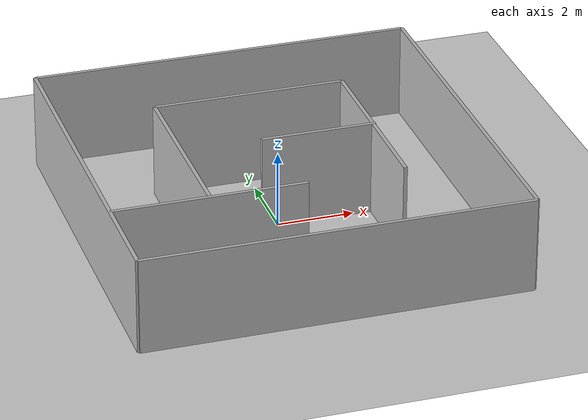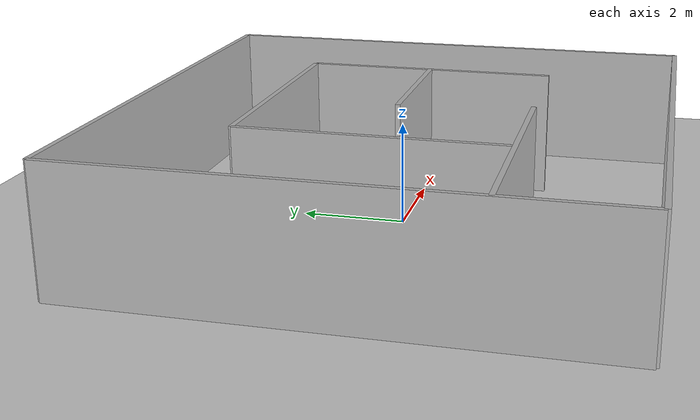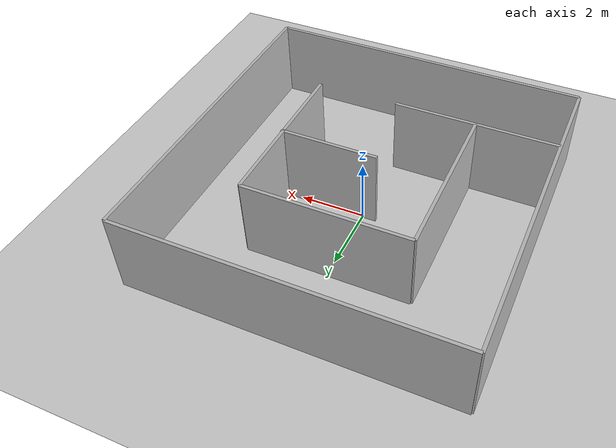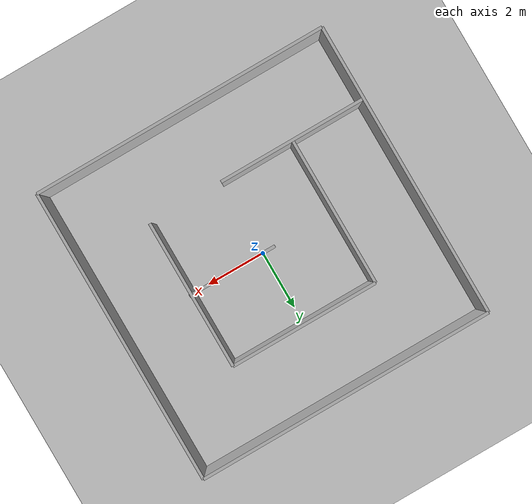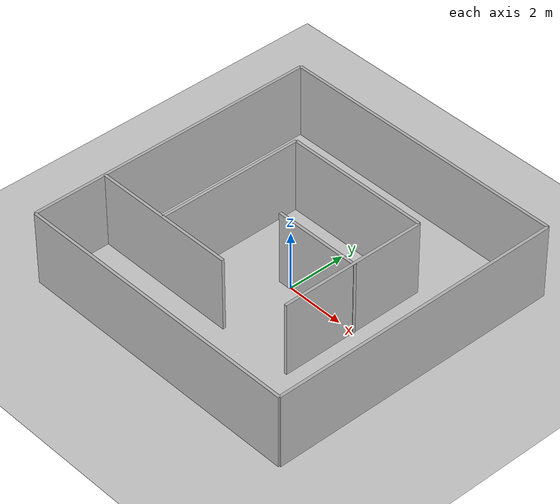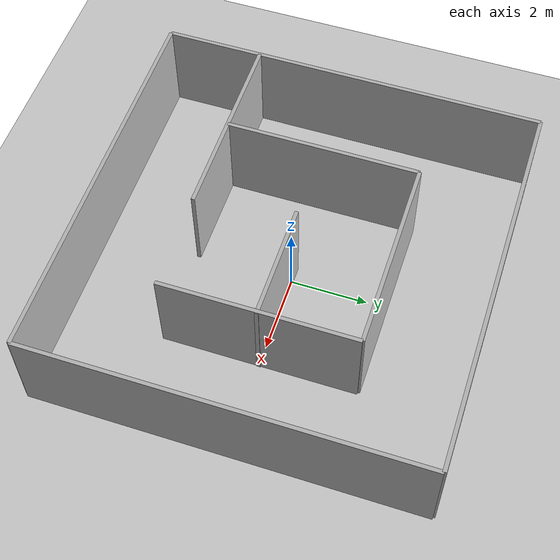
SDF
<sdf version="1.12">
 <world name="empty">
  <seed>12345</seed>
  <physics name="1ms" type="ode">
   <max_step_size>0.001</max_step_size>
   <real_time_factor>1.0</real_time_factor>
   <real_time_update_rate>1000</real_time_update_rate>
  </physics>
  <plugin name="gz::sim::systems::Physics" filename="gz-sim-physics-system"/>
  <plugin name="gz::sim::systems::UserCommands" filename="gz-sim-user-commands-system"/>
  <plugin name="gz::sim::systems::SceneBroadcaster" filename="gz-sim-scene-broadcaster-system"/>
  <plugin name="gz::sim::systems::Contact" filename="gz-sim-contact-system"/>
  <plugin name="gz::sim::systems::Sensors" filename="gz-sim-sensors-system">
   <render_engine>ogre2</render_engine>
  </plugin>
  <gravity>0 0 -9.8000000000000007</gravity>
  <magnetic_field>5.5644999999999998e-06 2.2875799999999999e-05 -4.2388400000000002e-05</magnetic_field>
  <atmosphere type="adiabatic"/>
  <scene>
   <ambient>0.400000006 0.400000006 0.400000006 1</ambient>
   <background>0.699999988 0.699999988 0.699999988 1</background>
   <shadows>true</shadows>
  </scene>
  <model name="ground_plane">
   <static>true</static>
   <link name="link">
    <collision name="collision">
     <geometry><plane><normal>0 0 1</normal><size>100 100</size></plane></geometry>
    </collision>
    <visual name="visual">
     <geometry><plane><normal>0 0 1</normal><size>100 100</size></plane></geometry>
     <material>
      <ambient>0.8 0.8 0.8 1</ambient>
      <diffuse>0.8 0.8 0.8 1</diffuse>
      <specular>0.8 0.8 0.8 1</specular>
     </material>
    </visual>
   </link>
  </model>
  <model name="wall_1">
   <static>true</static>
   <pose>0 -5 1.25 0 0 0</pose>
   <link name="link">
    <collision name="collision">
     <geometry><box><size>10 0.10000000000000001 2.5</size></box></geometry>
    </collision>
    <visual name="visual"><geometry><box><size>10 0.10000000000000001 2.5</size></box></geometry></visual>
    <inertial>
     <mass>1</mass>
     <inertia><ixx>1</ixx><ixy>0</ixy><ixz>0</ixz><iyy>1</iyy><iyz>0</iyz><izz>1</izz></inertia>
    </inertial>
   </link>
  </model>
  <model name="wall_2">
   <static>true</static>
   <pose>0 5 1.25 0 0 0</pose>
   <link name="link">
    <collision name="collision">
     <geometry><box><size>10 0.10000000000000001 2.5</size></box></geometry>
    </collision>
    <visual name="visual"><geometry><box><size>10 0.10000000000000001 2.5</size></box></geometry></visual>
    <inertial>
     <mass>1</mass>
     <inertia><ixx>1</ixx><ixy>0</ixy><ixz>0</ixz><iyy>1</iyy><iyz>0</iyz><izz>1</izz></inertia>
    </inertial>
   </link>
  </model>
  <model name="wall_3">
   <static>true</static>
   <pose>-5 0 1.25 0 0 1.5699999999999998</pose>
   <link name="link">
    <collision name="collision">
     <geometry><box><size>10 0.10000000000000001 2.5</size></box></geometry>
    </collision>
    <visual name="visual"><geometry><box><size>10 0.10000000000000001 2.5</size></box></geometry></visual>
    <inertial>
     <mass>1</mass>
     <inertia><ixx>1</ixx><ixy>0</ixy><ixz>0</ixz><iyy>1</iyy><iyz>0</iyz><izz>1</izz></inertia>
    </inertial>
   </link>
  </model>
  <model name="wall_4">
   <static>true</static>
   <pose>5 0 1.25 0 0 1.5699999999999998</pose>
   <link name="link">
    <collision name="collision">
     <geometry><box><size>10 0.10000000000000001 2.5</size></box></geometry>
    </collision>
    <visual name="visual"><geometry><box><size>10 0.10000000000000001 2.5</size></box></geometry></visual>
    <inertial>
     <mass>1</mass>
     <inertia><ixx>1</ixx><ixy>0</ixy><ixz>0</ixz><iyy>1</iyy><iyz>0</iyz><izz>1</izz></inertia>
    </inertial>
   </link>
  </model>
  <model name="wall_5">
   <static>true</static>
   <pose>-2.5 -2.5 1.25 0 0 0</pose>
   <link name="link">
    <collision name="collision"><geometry><box><size>5 0.10000000000000001 2.5</size></box></geometry></collision>
    <visual name="visual"><geometry><box><size>5 0.10000000000000001 2.5</size></box></geometry></visual>
    <inertial>
     <mass>1</mass>
     <inertia><ixx>1</ixx><ixy>0</ixy><ixz>0</ixz><iyy>1</iyy><iyz>0</iyz><izz>1</izz></inertia>
    </inertial>
   </link>
  </model>
  <model name="wall_6">
   <static>true</static>
   <pose>2.5 0 1.25 0 0 1.5699999999999998</pose>
   <link name="link">
    <collision name="collision"><geometry><box><size>5 0.10000000000000001 2.5</size></box></geometry></collision>
    <visual name="visual"><geometry><box><size>5 0.10000000000000001 2.5</size></box></geometry></visual>
    <inertial>
     <mass>1</mass>
     <inertia><ixx>1</ixx><ixy>0</ixy><ixz>0</ixz><iyy>1</iyy><iyz>0</iyz><izz>1</izz></inertia>
    </inertial>
   </link>
  </model>
  <model name="wall_7">
   <static>true</static>
   <pose>0 2.5 1.25 0 0 0</pose>
   <link name="link">
    <collision name="collision"><geometry><box><size>5 0.10000000000000001 2.5</size></box></geometry></collision>
    <visual name="visual"><geometry><box><size>5 0.10000000000000001 2.5</size></box></geometry></visual>
    <inertial>
     <mass>1</mass>
     <inertia><ixx>1</ixx><ixy>0</ixy><ixz>0</ixz><iyy>1</iyy><iyz>0</iyz><izz>1</izz></inertia>
    </inertial>
   </link>
  </model>
  <model name="wall_8">
   <static>true</static>
   <pose>-2.5 0 1.25 0 0 1.5699999999999998</pose>
   <link name="link">
    <collision name="collision"><geometry><box><size>5 0.10000000000000001 2.5</size></box></geometry></collision>
    <visual name="visual"><geometry><box><size>5 0.10000000000000001 2.5</size></box></geometry></visual>
    <inertial>
     <mass>1</mass>
     <inertia><ixx>1</ixx><ixy>0</ixy><ixz>0</ixz><iyy>1</iyy><iyz>0</iyz><izz>1</izz></inertia>
    </inertial>
   </link>
  </model>
  <model name="wall_9">
   <static>true</static>
   <pose>1.0673704147338867 0 1.25 0 0 0</pose>
   <link name="link">
    <collision name="collision"><geometry><box><size>3 0.10000000000000001 2.5</size></box></geometry></collision>
    <visual name="visual"><geometry><box><size>3 0.10000000000000001 2.5</size></box></geometry></visual>
    <inertial>
     <mass>1</mass>
     <inertia><ixx>1</ixx><ixy>0</ixy><ixz>0</ixz><iyy>1</iyy><iyz>0</iyz><izz>1</izz></inertia>
    </inertial>
   </link>
  </model>
  <light name="sun" type="directional">
   <pose>0 0 10 0 0 0</pose>
   <intensity>1</intensity>
   <direction>-0.5 0.10000000000000001 -0.90000000000000002</direction>
   <diffuse>0.800000012 0.800000012 0.800000012 1</diffuse>
   <specular>0.200000003 0.200000003 0.200000003 1</specular>
   <attenuation>
    <range>1000</range>
    <linear>0.01</linear>
    <constant>0.90000000000000002</constant>
    <quadratic>0.001</quadratic>
   </attenuation>
   <spot><inner_angle>0</inner_angle><outer_angle>0</outer_angle><falloff>0</falloff></spot>
  </light>
 </world>
</sdf>
